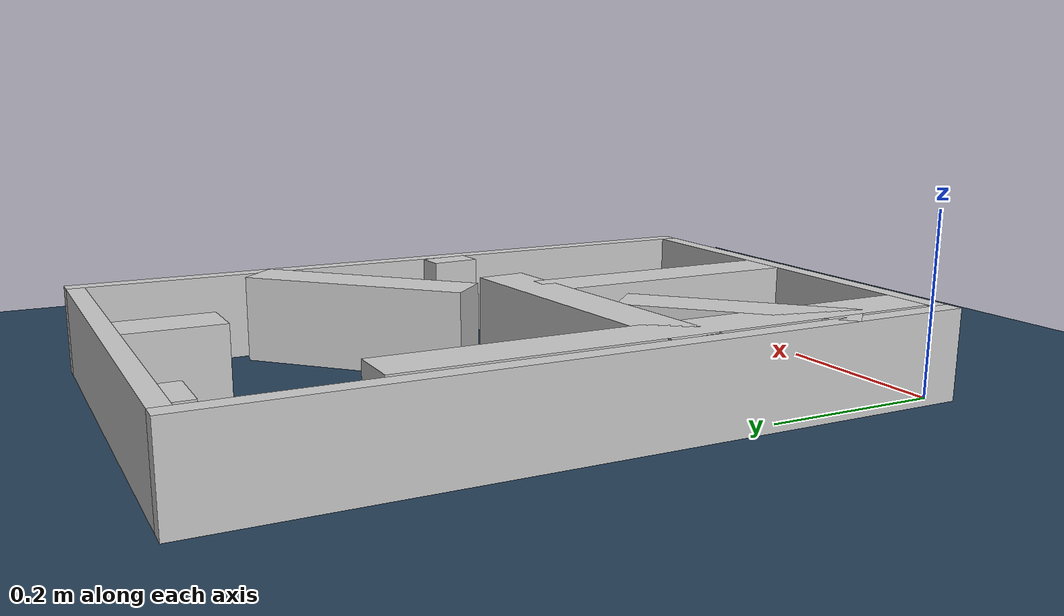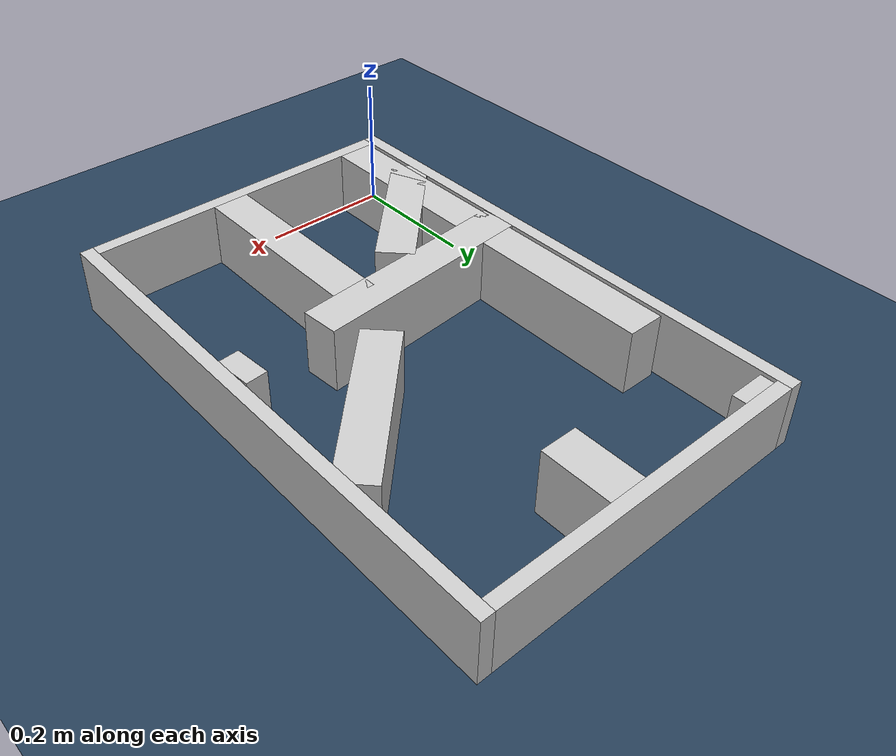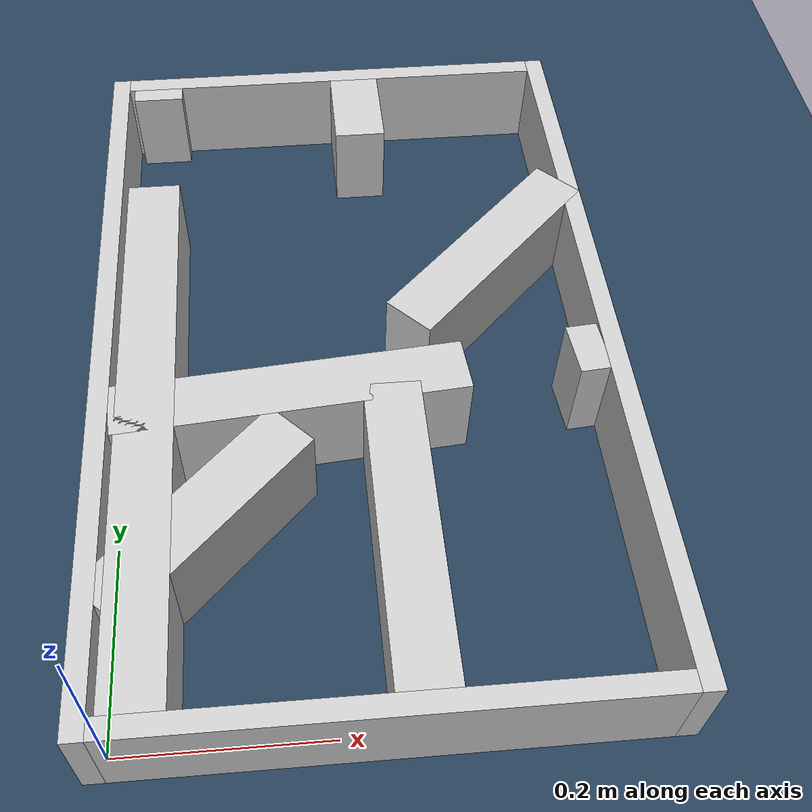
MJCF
<?xml version="1.0" ?>
<mujoco model="generated_real_template">
  <compiler angle="degree"/>
  <option timestep="0.002" integrator="implicitfast" iterations="100" cone="elliptic"/>
  <default>
    <geom density="1"/>
  </default>
  <asset>
    <texture builtin="gradient" height="3072" rgb1="0.3 0.5 0.7" rgb2="0 0 0" type="skybox" width="512"/>
    <texture builtin="checker" height="300" mark="edge" markrgb="0.8 0.8 0.8" name="groundplane" rgb1="0.2 0.3 0.4" rgb2="0.1 0.2 0.3" type="2d" width="300"/>
    <material name="groundplane" reflectance="0.2" texrepeat="5 5" texture="groundplane" texuniform="true"/>
  </asset>
  <worldbody>
    <light dir="0 0 -1" directional="true" pos="0 0 1.5"/>
    <geom name="floor" type="plane" condim="4" friction="0.5 0.005 0.001" material="groundplane" size="0 0 0.05"/>
    <body name="walls">
      <geom name="wall_boundary_left" type="box" condim="4" friction="1.0 0.005 0.0001" rgba="0.8 0.8 0.8 1" pos="-0.010000 0.387500 0.050000" euler="0 0 0.000000" size="0.010000 0.407500 0.050000"/>
      <geom name="wall_boundary_right" type="box" condim="4" friction="1.0 0.005 0.0001" rgba="0.8 0.8 0.8 1" pos="0.500000 0.387500 0.050000" euler="0 0 0.000000" size="0.010000 0.407500 0.050000"/>
      <geom name="wall_boundary_bottom" type="box" condim="4" friction="1.0 0.005 0.0001" rgba="0.8 0.8 0.8 1" pos="0.245000 -0.010000 0.050000" euler="0 0 0.000000" size="0.245000 0.010000 0.050000"/>
      <geom name="wall_boundary_top" type="box" condim="4" friction="1.0 0.005 0.0001" rgba="0.8 0.8 0.8 1" pos="0.245000 0.785000 0.050000" euler="0 0 0.000000" size="0.245000 0.010000 0.050000"/>
      <geom name="wall_inner_1_1" type="box" condim="4" friction="1.0 0.005 0.0001" rgba="0.8 0.8 0.8 1" pos="0.394325 0.484030 0.050000" euler="0 0 -135.423774" size="0.134309 0.028500 0.050000"/>
      <geom name="wall_inner_1_2" type="box" condim="4" friction="1.0 0.005 0.0001" rgba="0.8 0.8 0.8 1" pos="0.087376 0.181588 0.050000" euler="0 0 -135.423774" size="0.122659 0.028500 0.050000"/>
      <geom name="wall_inner_2_1" type="box" condim="4" friction="1.0 0.005 0.0001" rgba="0.8 0.8 0.8 1" pos="0.034997 0.301597 0.050000" euler="0 0 90.000000" size="0.301597 0.028500 0.050000"/>
      <geom name="wall_inner_2_2" type="box" condim="4" friction="1.0 0.005 0.0001" rgba="0.8 0.8 0.8 1" pos="0.034997 0.765099 0.050000" euler="0 0 90.000000" size="0.009901 0.028500 0.050000"/>
      <geom name="wall_inner_3_1" type="box" condim="4" friction="1.0 0.005 0.0001" rgba="0.8 0.8 0.8 1" pos="0.273164 0.153678 0.050000" euler="0 0 90.000000" size="0.153678 0.028500 0.050000"/>
      <geom name="wall_inner_3_2" type="box" condim="4" friction="1.0 0.005 0.0001" rgba="0.8 0.8 0.8 1" pos="0.273164 0.723686 0.050000" euler="0 0 90.000000" size="0.051314 0.028500 0.050000"/>
      <geom name="wall_inner_4_1" type="box" condim="4" friction="1.0 0.005 0.0001" rgba="0.8 0.8 0.8 1" pos="0.473768 0.335332 0.050000" euler="0 0 -175.215141" size="0.016289 0.028500 0.050000"/>
      <geom name="wall_inner_4_2" type="box" condim="4" friction="1.0 0.005 0.0001" rgba="0.8 0.8 0.8 1" pos="0.174911 0.310315 0.050000" euler="0 0 -175.215141" size="0.175523 0.028500 0.050000"/>
    </body>
  </worldbody>
</mujoco>
